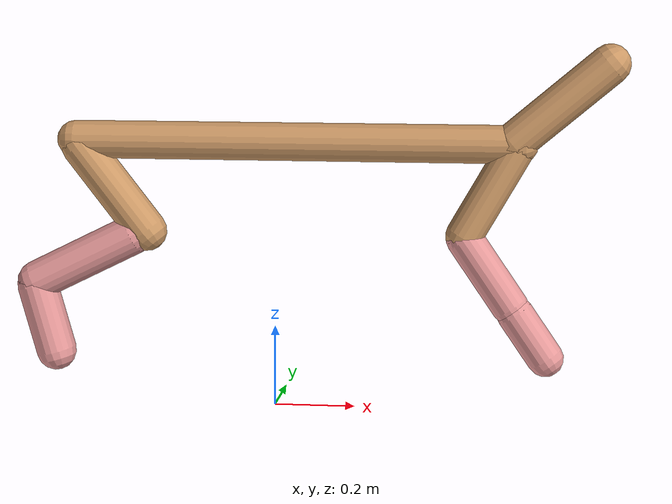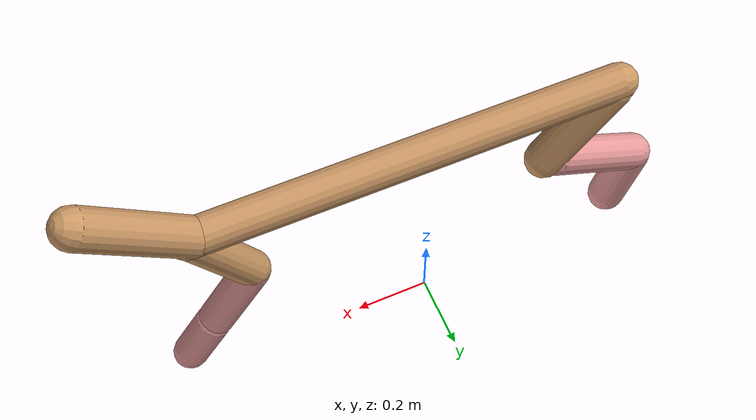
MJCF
<mujoco model="cheetah">
  <compiler angle="radian" coordinate="local" inertiafromgeom="true" settotalmass="14" />
  <default>
    <joint armature=".1" damping=".01" limited="true" solimplimit="0 .8 .03" solreflimit=".02 1" stiffness="8" />
    <geom conaffinity="0" condim="3" contype="1" friction="0.8 .1 .1" rgba="0.8 0.6 .4 1" solimp="0.0 0.8 0.01" solref="0.02 1" />
    <motor ctrllimited="true" ctrlrange="-1 1" />
  </default>
  <size nstack="300000" nuser_geom="1" />
  <option gravity="0 0 -9.81" timestep="0.01" />
  <worldbody>
    <body name="torso" pos="0.0 0.0 0.6638698653209256">
      <joint armature="0" axis="1 0 0" damping="0" limited="false" name="ignorex" pos="0 0 0" stiffness="0" type="slide" />
      <joint armature="0" axis="0 0 1" damping="0" limited="false" name="ignorez" pos="0 0 0" stiffness="0" type="slide" />
      <joint armature="0" axis="0 1 0" damping="0" limited="false" name="ignorey" pos="0 0 0" stiffness="0" type="hinge" />
      <geom fromto="-0.5 0.0 0.0 0.5991518276482801 0.0 0.0" name="torso" size="0.04744988524156714" type="capsule" />
      <geom axisangle="0 1 0 .87" name="head" pos="0.6991518276482801 0.0 0.1" size="0.049806750079107114 0.15" type="capsule" />

      <body name="bthigh" pos="-.5 0 0">
        <joint axis="0 1 0" damping="6" name="bthigh" pos="0 0 0" range="-.52 1.05" stiffness="240" type="hinge" />
        <geom axisangle="0 1 0 -3.8" name="bthigh" pos="0.0938855384335014 0.0 -0.12205119996355182" size="0.0504152550687479 0.13497153739261958" type="capsule" />
        <body name="bshin" pos="0.1477710768670028 0.0 -0.23410239992710363">
          <joint axis="0 1 0" damping="4.5" name="bshin" pos="0 0 0" range="-.785 .785" stiffness="180" type="hinge" />
          <geom axisangle="0 1 0 -2.03" name="bshin" pos="-0.13072096933796523 0.0 -0.06536048466898262" rgba="0.9 0.6 0.6 1" size="0.0504152550687479 0.13962572833719267" type="capsule" />
          <body name="bfoot" pos="-0.26144193867593046 0.0 -0.13072096933796523">
            <joint axis="0 1 0" damping="3" name="bfoot" pos="0 0 0" range="-.4 .785" stiffness="120" type="hinge" />
            <geom axisangle="0 1 0 -.27" name="bfoot" pos="0.028079089211130493 0.0 -0.0907890551159886" rgba="0.9 0.6 0.6 1" size="0.0504152550687479 0.08749878975797408" type="capsule" />
            <inertial mass="10" />
          </body>
        </body>
      </body>
      <body name="fthigh" pos="0.5991518276482801 0.0 0.0">
        <joint axis="0 1 0" damping="4.5" name="fthigh" pos="0 0 0" range="-1.5 0.8" stiffness="180" type="hinge" />
        <geom axisangle="0 1 0 .52" name="fthigh" pos="-0.06746730604002289 0.0 -0.11565823892575351" size="0.04577440368599564 0.12797352728837147" type="capsule" />
        <body name="fshin" pos="-0.13493461208004578 0.0 -0.23131647785150702">
          <joint axis="0 1 0" damping="3" name="fshin" pos="0 0 0" range="-1.2 1.1" stiffness="120" type="hinge" />
          <geom axisangle="0 1 0 -.6" name="fshin" pos="0.06265448915088433 0.0 -0.08675236959353214" rgba="0.9 0.6 0.6 1" size="0.04577440368599564 0.10199393904185995" type="capsule" />
          <body name="ffoot" pos="0.12530897830176865 0.0 -0.17350473918706427">
            <joint axis="0 1 0" damping="1.5" name="ffoot" pos="0 0 0" range="-3.1 -0.3" stiffness="60" type="hinge" />
            <geom axisangle="0 1 0 -.6" name="ffoot" pos="0.04356941932824038 0.0 -0.06777465228837393" rgba="0.9 0.6 0.6 1" size="0.04577440368599564 0.0673544880465113" type="capsule" />
            <inertial mass="10" />
          </body>
        </body>
      </body>
    </body>
  </worldbody>
  <actuator>
    <motor gear="120" joint="bthigh" name="bthigh" />
    <motor gear="90" joint="bshin" name="bshin" />
    <motor gear="60" joint="bfoot" name="bfoot" />
    <motor gear="120" joint="fthigh" name="fthigh" />
    <motor gear="60" joint="fshin" name="fshin" />
    <motor gear="30" joint="ffoot" name="ffoot" />
  </actuator>
</mujoco>
